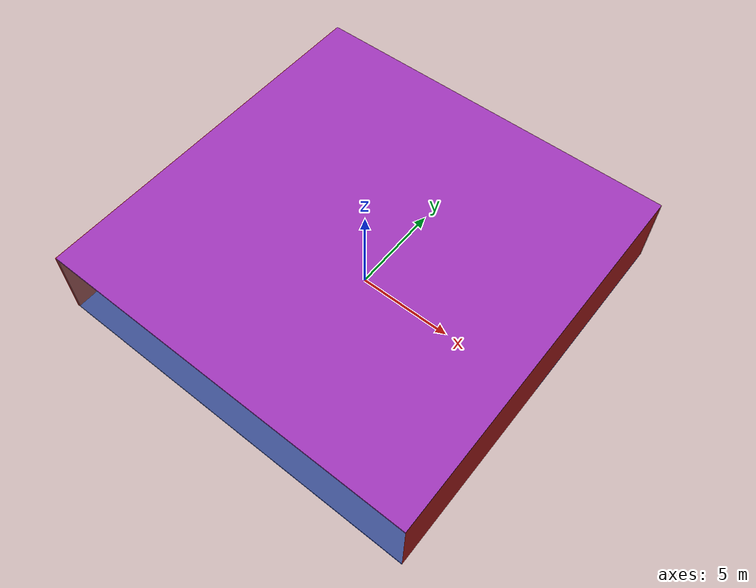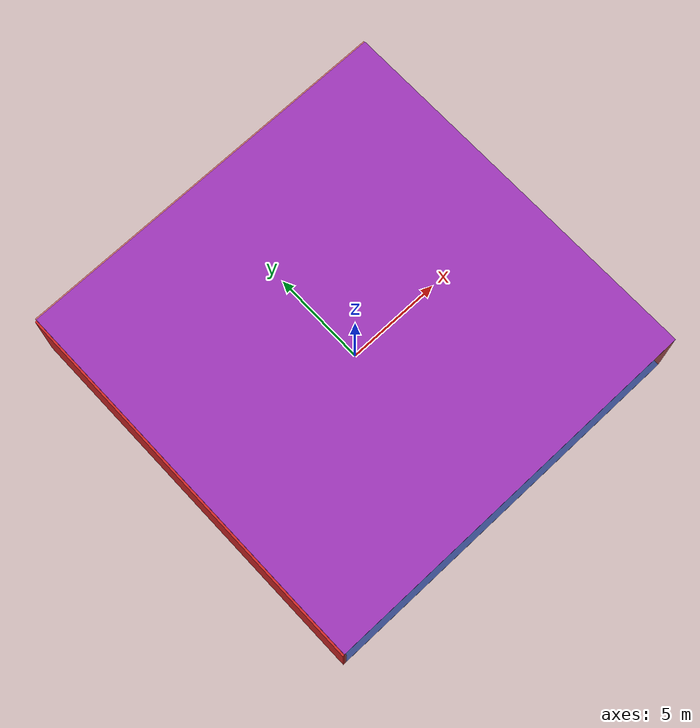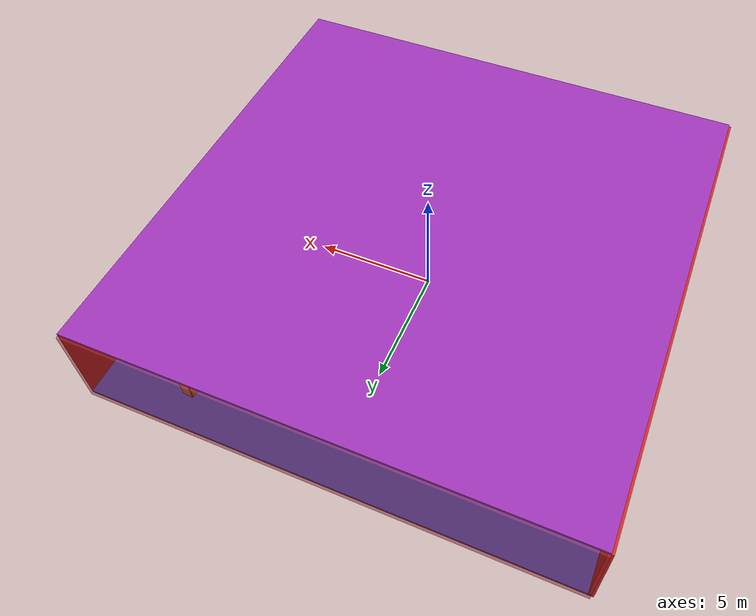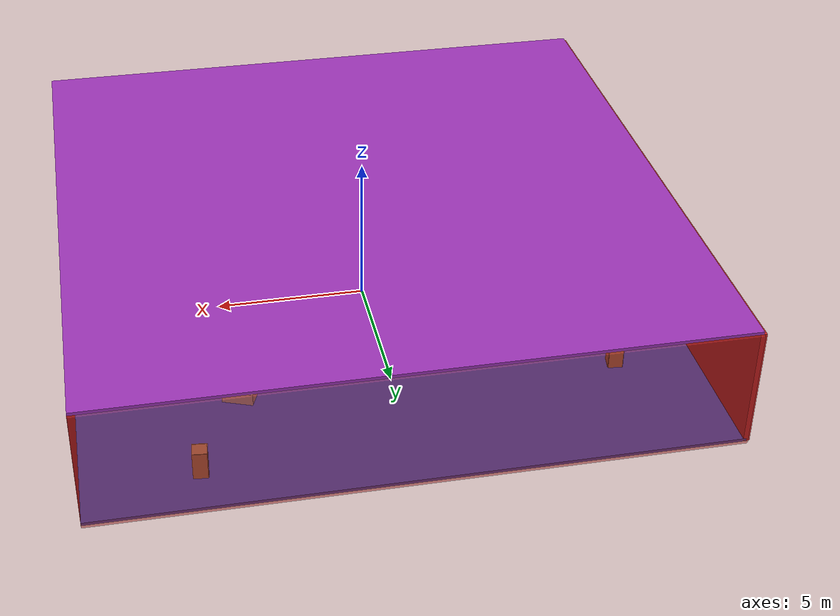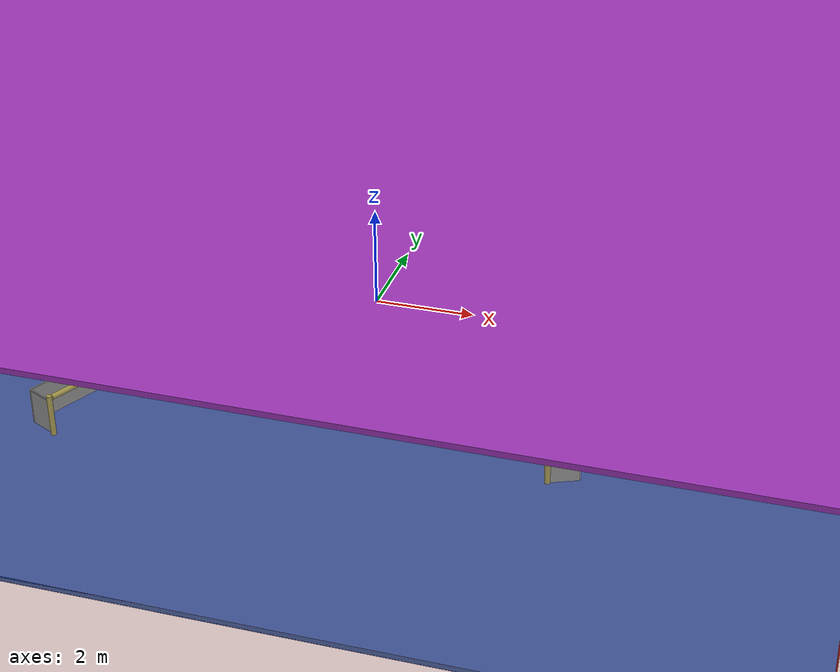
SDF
<sdf version="1.4">
 <world name="default">
  <physics type="ode">
   <max_step_size>0.001</max_step_size>
   <real_time_factor>1</real_time_factor>
   <real_time_update_rate>1000</real_time_update_rate>
   <gravity>0 0 -9.8</gravity>
  </physics>
  <scene><ambient>0.4 0.4 0.4 1</ambient><background>0.7 0.7 0.7 1</background><shadows>1</shadows></scene>
  <model name="Surrounding">
   <static>1</static>
   <link name="Ceiling">
    <collision name="Ceiling_Collision"><geometry><box><size>20 20 0.1</size></box></geometry></collision>
    <visual name="Ceiling_Visual">
     <geometry><box><size>20 20 0.1</size></box></geometry>
     <material>
      <script><uri>file://media/materials/scripts/gazebo.material</uri><name>Gazebo/PurpleGlow</name></script>
     </material>
    </visual>
    <pose>0 0 4.05 0 0 0</pose>
   </link>
   <link name="Wall_South">
    <collision name="Wall_South_Collision">
     <geometry><box><size>20 0 4</size></box></geometry>
     <pose>0 0 2 0 -0 0</pose>
    </collision>
    <visual name="Wall_South_Visual">
     <pose>0 0 2 0 -0 0</pose>
     <geometry><box><size>20 0 4</size></box></geometry>
     <material>
      <script><uri>file://media/materials/scripts/gazebo.material</uri><name>Gazebo/GreyTransparent</name></script>
     </material>
    </visual>
    <velocity_decay><linear>0</linear><angular>0</angular></velocity_decay>
    <pose>0 -10 0 0 -0 0</pose>
   </link>
   <link name="Wall_East">
    <collision name="Wall_21_Collision">
     <geometry><box><size>20 0 4</size></box></geometry>
     <pose>0 0 2 0 -0 0</pose>
    </collision>
    <visual name="Wall_21_Visual">
     <pose>0 0 2 0 -0 0</pose>
     <geometry><box><size>20 0 4</size></box></geometry>
     <material>
      <script><uri>file://media/materials/scripts/gazebo.material</uri><name>Gazebo/RedBright</name></script>
     </material>
    </visual>
    <velocity_decay><linear>0</linear><angular>0</angular></velocity_decay>
    <pose>10 0 0 0 -0 1.5708</pose>
   </link>
   <link name="Wall_North">
    <collision name="Wall_22_Collision">
     <geometry><box><size>20 0.2 4</size></box></geometry>
     <pose>0 0 2 0 -0 0</pose>
    </collision>
    <visual name="Wall_22_Visual">
     <pose>0 0 2 0 -0 0</pose>
     <geometry><box><size>20 0.2 4</size></box></geometry>
     <material>
      <script><uri>file://media/materials/scripts/gazebo.material</uri><name>Gazebo/RedTransparent</name></script>
     </material>
    </visual>
    <velocity_decay><linear>0</linear><angular>0</angular></velocity_decay>
    <pose>0 10 0 0 -0 0</pose>
   </link>
   <link name="Wall_West">
    <collision name="Wall_23_Collision">
     <geometry><box><size>20 0.2 4</size></box></geometry>
     <pose>0 0 2 0 -0 0</pose>
    </collision>
    <visual name="Wall_23_Visual">
     <pose>0 0 2 0 -0 0</pose>
     <geometry><box><size>20 0.2 4</size></box></geometry>
     <material>
      <script><uri>file://media/materials/scripts/gazebo.material</uri><name>Gazebo/Red</name></script>
     </material>
    </visual>
    <velocity_decay><linear>0</linear><angular>0</angular></velocity_decay>
    <pose>-10 0 0 0 0 -1.5708</pose>
   </link>
   <link name="Ground_link">
    <collision name="collision">
     <pose>0 0 .05 0 -0 0</pose>
     <geometry><box><size>20 20 0.1</size></box></geometry>
    </collision>
    <visual name="visual">
     <pose>0 0 .05 0 -0 0</pose>
     <geometry><box><size>20 20 0.1</size></box></geometry>
     <material>
      <script><uri>file://media/materials/scripts/gazebo.material</uri><name>Gazebo/Blue</name></script>
     </material>
    </visual>
   </link>
   <static>1</static>
  </model>
  <spherical_coordinates>
   <surface_model>EARTH_WGS84</surface_model>
   <latitude_deg>0</latitude_deg>
   <longitude_deg>0</longitude_deg>
   <elevation>0</elevation>
   <heading_deg>0</heading_deg>
  </spherical_coordinates>
  <light name="lightball_0" type="diffuse">
   <diffuse>0.8 0.8 0.8 1</diffuse>
   <specular>0.2 0.2 0.2 1</specular>
   <attenuation>
    <range>100</range>
    <constant>0.7</constant>
    <linear>0.01</linear>
    <quadratic>0.001</quadratic>
   </attenuation>
   <direction>-0.5 0.1 -0.9</direction>
   <pose>3.47264104003 8.79043981823 0.84398333166 0 0 0</pose>
  </light>
  <light name="lightball_1" type="diffuse">
   <diffuse>0.8 0.8 0.8 1</diffuse>
   <specular>0.2 0.2 0.2 1</specular>
   <attenuation>
    <range>100</range>
    <constant>0.7</constant>
    <linear>0.01</linear>
    <quadratic>0.001</quadratic>
   </attenuation>
   <direction>-0.5 0.1 -0.9</direction>
   <pose>0.0669374026315 4.39461239227 1.5841725217 0 0 0</pose>
  </light>
  <light name="lightball_2" type="diffuse">
   <diffuse>0.8 0.8 0.8 1</diffuse>
   <specular>0.2 0.2 0.2 1</specular>
   <attenuation>
    <range>100</range>
    <constant>0.7</constant>
    <linear>0.01</linear>
    <quadratic>0.001</quadratic>
   </attenuation>
   <direction>-0.5 0.1 -0.9</direction>
   <pose>4.14862208552 -2.52453145465 3.45131714369 0 0 0</pose>
  </light>
  <light name="lightball_3" type="diffuse">
   <diffuse>0.8 0.8 0.8 1</diffuse>
   <specular>0.2 0.2 0.2 1</specular>
   <attenuation>
    <range>100</range>
    <constant>0.7</constant>
    <linear>0.01</linear>
    <quadratic>0.001</quadratic>
   </attenuation>
   <direction>-0.5 0.1 -0.9</direction>
   <pose>-1.89236813091 6.07615265112 1.6606144781 0 0 0</pose>
  </light>
  <light name="lightball_4" type="diffuse">
   <diffuse>0.8 0.8 0.8 1</diffuse>
   <specular>0.2 0.2 0.2 1</specular>
   <attenuation>
    <range>100</range>
    <constant>0.7</constant>
    <linear>0.01</linear>
    <quadratic>0.001</quadratic>
   </attenuation>
   <direction>-0.5 0.1 -0.9</direction>
   <pose>3.92302310597 4.34206911958 2.97520103943 0 0 0</pose>
  </light>
  <include><uri>model://cabinet</uri><pose>-7.48309820708 -1.03326678973 0 0 0 0.528438402125</pose></include>
  <include><uri>model://cabinet</uri><pose>-7.23994596464 5.64911140077 0 0 0 1.40984058924</pose></include>
  <include>
   <uri>model://robocup_3Dsim_goal</uri>
   <pose>-3.49454852074 -5.2376932911 0 0 0 2.69777977498</pose>
  </include>
  <include>
   <uri>model://textured_shapes</uri>
   <pose>1.54380861277 -0.90267213121 0 0 0 0.54290315253</pose>
  </include>
  <include>
   <uri>model://robocup_3Dsim_goal</uri>
   <pose>4.36469972614 -4.18033334066 0 0 0 0.401069129741</pose>
  </include>
  <include><uri>model://cabinet</uri><pose>4.89542904993 2.6704105257 0 0 0 2.72732180583</pose></include>
  <include>
   <uri>model://textured_shapes</uri>
   <pose>4.26784587589 3.61337634332 0 0 0 2.77084076851</pose>
  </include>
  <include><uri>model://cabinet</uri><pose>6.44075370556 8.50267384346 0 0 0 3.05571201425</pose></include>
 </world>
</sdf>

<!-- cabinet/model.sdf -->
<sdf version="1.5">
  <model name="cabinet">
    <static>true</static>
    <link name="cabinet_bottom_plate">
      <inertial>
        <pose>0 0 -1 0 0 0</pose>
        <inertia>
          <ixx>2.050000</ixx>
          <ixy>0</ixy>
          <ixz>0</ixz>
          <iyy>2.050000</iyy>
          <iyz>0</iyz>
          <izz>2.050000</izz>
        </inertia>
        <mass>25.000000</mass>
      </inertial>
      <collision name="cabinet_bottom_plate_geom">
        <pose>0 0 0.010000 0 0 0</pose>
        <geometry>
          <box>
            <size>0.450000 0.450000 0.020000</size>
          </box>
        </geometry>
      </collision>
      <visual name="cabinet_bottom_plate_geom_visual">
        <pose>0 0 0.010000 0 0 0</pose>
        <geometry>
          <box>
            <size>0.450000 0.450000 0.020000</size>
          </box>
        </geometry>
        <material>
          <script>
            <uri>model://media/materials/scripts/gazebo.material</uri>
            <name>Gazebo/Wood</name>
          </script>
        </material>
      </visual>
      <collision name="cabinet_bottom_plate_geom_cabinet_back_plate">
        <pose>0.235000 0 0.510000 0 0 0</pose>
        <geometry>
          <box>
            <size>0.020000 0.450000 1.020000</size>
          </box>
        </geometry>
      </collision>
      <visual name="cabinet_bottom_plate_geom_cabinet_back_plate_visual">
        <pose>0.235000 0 0.510000 0 0 0</pose>
        <geometry>
          <box>
            <size>0.020000 0.450000 1.020000</size>
          </box>
        </geometry>
        <material>
          <script>
            <uri>model://media/materials/scripts/gazebo.material</uri>
            <name>Gazebo/Wood</name>
          </script>
        </material>
      </visual>
      <collision name="cabinet_bottom_plate_geom_cabinet_left_plate">
        <pose>0 0.235000 0.510000 0 0 0</pose>
        <geometry>
          <box>
            <size>0.450000 0.020000 1.020000</size>
          </box>
        </geometry>
      </collision>
      <visual name="cabinet_bottom_plate_geom_cabinet_left_plate_visual">
        <pose>0 0.235000 0.510000 0 0 0</pose>
        <geometry>
          <box>
            <size>0.450000 0.020000 1.020000</size>
          </box>
        </geometry>
        <material>
          <script>
            <uri>model://media/materials/scripts/gazebo.material</uri>
            <name>Gazebo/Wood</name>
          </script>
        </material>
      </visual>
      <collision name="cabinet_bottom_plate_geom_cabinet_middle_plate">
        <pose>0 0 0.510000 0 0 0</pose>
        <geometry>
          <box>
            <size>0.450000 0.450000 0.020000</size>
          </box>
        </geometry>
      </collision>
      <visual name="cabinet_bottom_plate_geom_cabinet_middle_plate_visual">
        <pose>0 0 0.510000 0 0 0</pose>
        <geometry>
          <box>
            <size>0.450000 0.450000 0.020000</size>
          </box>
        </geometry>
        <material>
          <script>
            <uri>model://media/materials/scripts/gazebo.material</uri>
            <name>Gazebo/Wood</name>
          </script>
        </material>
      </visual>
      <collision name="cabinet_bottom_plate_geom_cabinet_right_plate">
        <pose>0 -0.235000 0.510000 0 0 0</pose>
        <geometry>
          <box>
            <size>0.450000 0.020000 1.020000</size>
          </box>
        </geometry>
      </collision>
      <visual name="cabinet_bottom_plate_geom_cabinet_right_plate_visual">
        <pose>0 -0.235000 0.510000 0 0 0</pose>
        <geometry>
          <box>
            <size>0.450000 0.020000 1.020000</size>
          </box>
        </geometry>
        <material>
          <script>
            <uri>model://media/materials/scripts/gazebo.material</uri>
            <name>Gazebo/Wood</name>
          </script>
        </material>
      </visual>
      <collision name="cabinet_bottom_plate_geom_cabinet_top_plate">
        <pose>0 0 1.010000 0 0 0</pose>
        <geometry>
          <box>
            <size>0.450000 0.450000 0.020000</size>
          </box>
        </geometry>
      </collision>
      <visual name="cabinet_bottom_plate_geom_cabinet_top_plate_visual">
        <pose>0 0 1.010000 0 0 0</pose>
        <geometry>
          <box>
            <size>0.450000 0.450000 0.020000</size>
          </box>
        </geometry>
        <material>
          <script>
            <uri>model://media/materials/scripts/gazebo.material</uri>
            <name>Gazebo/Wood</name>
          </script>
        </material>
      </visual>
    </link>
  </model>
</sdf>

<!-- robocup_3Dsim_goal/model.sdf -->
<sdf version="1.5">
  <model name="robocup_3d_goal">
    <static>true</static>
    <link name="left_post">
      <pose>0 1.05 0.45 0 0 0</pose>
      <collision name="collision">
        <geometry>
          <cylinder>
            <radius>0.05</radius>
            <length>0.9</length>
          </cylinder>
        </geometry>
      </collision>
      <visual name="visual">
        <geometry>
          <cylinder>
            <radius>0.05</radius>
            <length>0.9</length>
          </cylinder>
        </geometry>
        <material>
          <script>
            <uri>file://media/materials/scripts/gazebo.material</uri>
            <name>Gazebo/ZincYellow</name>
          </script>
        </material>
      </visual>
    </link>
    <link name="left_support_horiz_lower">
      <pose>0.30 1.05 0.01 0 0 0</pose>
      <collision name="collision">
        <geometry>
          <box>
            <size>0.50 0.02 0.02</size>
          </box>
        </geometry>
      </collision>
      <visual name="visual">
        <geometry>
          <box>
            <size>0.50 0.02 0.02</size>
          </box>
        </geometry>
        <material>
          <script>
            <uri>file://media/materials/scripts/gazebo.material</uri>
            <name>Gazebo/White</name>
          </script>
        </material>
      </visual>
    </link>
    <link name="left_support_horiz_upper">
      <pose>0.30 1.05 0.79 0 0 0</pose>
      <collision name="collision">
        <geometry>
          <box>
            <size>0.50 0.02 0.02</size>
          </box>
        </geometry>
      </collision>
      <visual name="visual">
        <geometry>
          <box>
            <size>0.50 0.02 0.02</size>
          </box>
        </geometry>
        <material>
          <script>
            <uri>file://media/materials/scripts/gazebo.material</uri>
            <name>Gazebo/White</name>
          </script>
        </material>
      </visual>
    </link>
    <link name="left_support_vertical">
      <pose>0.56 1.05 0.4 0 1.5708 0</pose>
      <collision name="collision">
        <geometry>
          <box>
            <size>0.80 0.02 0.02</size>
          </box>
        </geometry>
      </collision>
      <visual name="visual">
        <geometry>
          <box>
            <size>0.80 0.02 0.02</size>
          </box>
        </geometry>
        <material>
          <script>
            <uri>file://media/materials/scripts/gazebo.material</uri>
            <name>Gazebo/White</name>
          </script>
        </material>
      </visual>
    </link>
    <link name="right_support_horiz_lower">
      <pose>0.30 -1.05 0.01 0 0 0</pose>
      <collision name="collision">
        <geometry>
          <box>
            <size>0.50 0.02 0.02</size>
          </box>
        </geometry>
      </collision>
      <visual name="visual">
        <geometry>
          <box>
            <size>0.50 0.02 0.02</size>
          </box>
        </geometry>
        <material>
          <script>
            <uri>file://media/materials/scripts/gazebo.material</uri>
            <name>Gazebo/White</name>
          </script>
        </material>
      </visual>
    </link>
    <link name="right_support_horiz_upper">
      <pose>0.30 -1.05 0.79 0 0 0</pose>
      <collision name="collision">
        <geometry>
          <box>
            <size>0.50 0.02 0.02</size>
          </box>
        </geometry>
      </collision>
      <visual name="visual">
        <geometry>
          <box>
            <size>0.50 0.02 0.02</size>
          </box>
        </geometry>
        <material>
          <script>
            <uri>file://media/materials/scripts/gazebo.material</uri>
            <name>Gazebo/White</name>
          </script>
        </material>
      </visual>
    </link>
    <link name="right_support_vertical">
      <pose>0.56 -1.05 0.4 0 1.5708 0</pose>
      <collision name="collision">
        <geometry>
          <box>
            <size>0.80 0.02 0.02</size>
          </box>
        </geometry>
      </collision>
      <visual name="visual">
        <geometry>
          <box>
            <size>0.80 0.02 0.02</size>
          </box>
        </geometry>
        <material>
          <script>
            <uri>file://media/materials/scripts/gazebo.material</uri>
            <name>Gazebo/White</name>
          </script>
        </material>
      </visual>
    </link>
    <link name="center_support_horiz_lower">
      <pose>0.56 0 0.01 0 1.5708 0</pose>
      <collision name="collision">
        <geometry>
          <box>
            <size>0.02 2.08 0.02</size>
          </box>
        </geometry>
      </collision>
      <visual name="visual">
        <geometry>
          <box>
            <size>0.02 2.08 0.02</size>
          </box>
        </geometry>
        <material>
          <script>
            <uri>file://media/materials/scripts/gazebo.material</uri>
            <name>Gazebo/White</name>
          </script>
        </material>
      </visual>
    </link>
    <link name="center_support_horiz_upper">
      <pose>0.56 0 0.79 0 1.5708 0</pose>
      <collision name="collision">
        <geometry>
          <box>
            <size>0.02 2.08 0.02</size>
          </box>
        </geometry>
      </collision>
      <visual name="visual">
        <geometry>
          <box>
            <size>0.02 2.08 0.02</size>
          </box>
        </geometry>
        <material>
          <script>
            <uri>file://media/materials/scripts/gazebo.material</uri>
            <name>Gazebo/White</name>
          </script>
        </material>
      </visual>
    </link>
    <link name="right_post">
      <pose>0 -1.05 0.45 0 0 0</pose>
      <collision name="collision">
        <geometry>
          <cylinder>
            <radius>0.05</radius>
            <length>0.9</length>
          </cylinder>
        </geometry>
      </collision>
      <visual name="visual">
        <geometry>
          <cylinder>
            <radius>0.05</radius>
            <length>0.9</length>
          </cylinder>
        </geometry>
        <material>
          <script>
            <uri>file://media/materials/scripts/gazebo.material</uri>
            <name>Gazebo/ZincYellow</name>
          </script>
        </material>
      </visual>
    </link>
    <link name="crossbar">
      <pose>0 0 0.85 1.57 1.57 0</pose>
      <collision name="collision">
        <geometry>
          <cylinder>
            <radius>0.05</radius>
            <length>2.0</length>
          </cylinder>
        </geometry>
      </collision>
      <visual name="visual">
        <geometry>
          <cylinder>
            <radius>0.05</radius>
            <length>2.0</length>
          </cylinder>
        </geometry>
        <material>
          <script>
            <uri>file://media/materials/scripts/gazebo.material</uri>
            <name>Gazebo/ZincYellow</name>
          </script>
        </material>
      </visual>
    </link>
    <link name="center_net">
      <pose>0.56 0 0.40 0 0 0</pose>
      <collision name="collision">
        <geometry>
          <box>
            <size>0.01 2.1 0.80</size>
          </box>
        </geometry>
      </collision>
      <visual name="visual">
        <geometry>
          <box>
            <size>0.01 2.1 0.80</size>
          </box>
        </geometry>
        <material>
          <script>
            <uri>model://../model_source/models/robocup09_spl_field/materials/scripts/</uri>
            <uri>model://../model_source/models/robocup09_spl_field/materials/textures/</uri>
            <name>RoboCup/Net</name>
          </script>
        </material>
      </visual>
    </link>
    <link name="left_net">
      <pose>0.30 1.05 0.40 0 0 0</pose>
      <collision name="collision">
        <geometry>
          <box>
            <size>0.50 0.01 0.76</size>
          </box>
        </geometry>
      </collision>
      <visual name="visual">
        <geometry>
          <box>
            <size>0.50 0.01 0.76</size>
          </box>
        </geometry>
        <material>
          <script>
            <uri>model://../model_source/models/robocup09_spl_field/materials/scripts/</uri>
            <uri>model://../model_source/models/robocup09_spl_field/materials/textures/</uri>
            <name>RoboCup/Net</name>
          </script>
        </material>
      </visual>
    </link>
    <link name="right_net">
      <pose>0.30 -1.05 0.40 0 0 0</pose>
      <collision name="collision">
        <geometry>
          <box>
            <size>0.50 0.01 0.76</size>
          </box>
        </geometry>
      </collision>
      <visual name="visual">
        <geometry>
          <box>
            <size>0.50 0.01 0.76</size>
          </box>
        </geometry>
        <material>
          <script>
            <uri>model://../model_source/models/robocup09_spl_field/materials/scripts/</uri>
            <uri>model://../model_source/models/robocup09_spl_field/materials/textures/</uri>
            <name>RoboCup/Net</name>
          </script>
        </material>
      </visual>
    </link>
  </model>
</sdf>

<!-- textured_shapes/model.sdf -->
<sdf version="1.6">
  <model name="textured_shapes">
    <pose>0 0 0.5 0 0 0</pose>
    <link name="box">
      <pose>0 -1.5 0 0 0 0</pose>
      <collision name="collision">
        <geometry>
          <box>
            <size>1 1 1</size>
          </box>
        </geometry>
      </collision>
      <visual name="visual">
        <geometry>
          <box>
            <size>1 1 1</size>
          </box>
        </geometry>
        <material>
          <script>
            <uri>model://../model_source/models/textured_shapes/materials/scripts</uri>
            <uri>model://../model_source/models/textured_shapes/materials/textures</uri>
            <name>TexturedShape/Squares</name>
          </script>
        </material>
      </visual>
    </link>
    <link name="sphere">
      <collision name="collision">
        <geometry>
          <sphere>
            <radius>0.5</radius>
          </sphere>
        </geometry>
      </collision>
      <visual name="visual">
        <geometry>
          <sphere>
            <radius>0.5</radius>
          </sphere>
        </geometry>
        <material>
          <script>
            <uri>model://../model_source/models/textured_shapes/materials/scripts</uri>
            <uri>model://../model_source/models/textured_shapes/materials/textures</uri>
            <name>TexturedShape/Squares</name>
          </script>
        </material>
      </visual>
    </link>
    <link name="cylinder">
      <pose>0 1.5 0 0 0 0</pose>
      <collision name="collision">
        <geometry>
          <cylinder>
            <radius>0.5</radius>
            <length>1</length>
          </cylinder>
        </geometry>
      </collision>
      <visual name="visual">
        <geometry>
          <cylinder>
            <radius>0.5</radius>
            <length>1</length>
          </cylinder>
        </geometry>
        <material>
          <script>
            <uri>model://../model_source/models/textured_shapes/materials/scripts</uri>
            <uri>model://../model_source/models/textured_shapes/materials/textures</uri>
            <name>TexturedShape/Squares</name>
          </script>
        </material>
      </visual>
    </link>
  </model>
</sdf>
